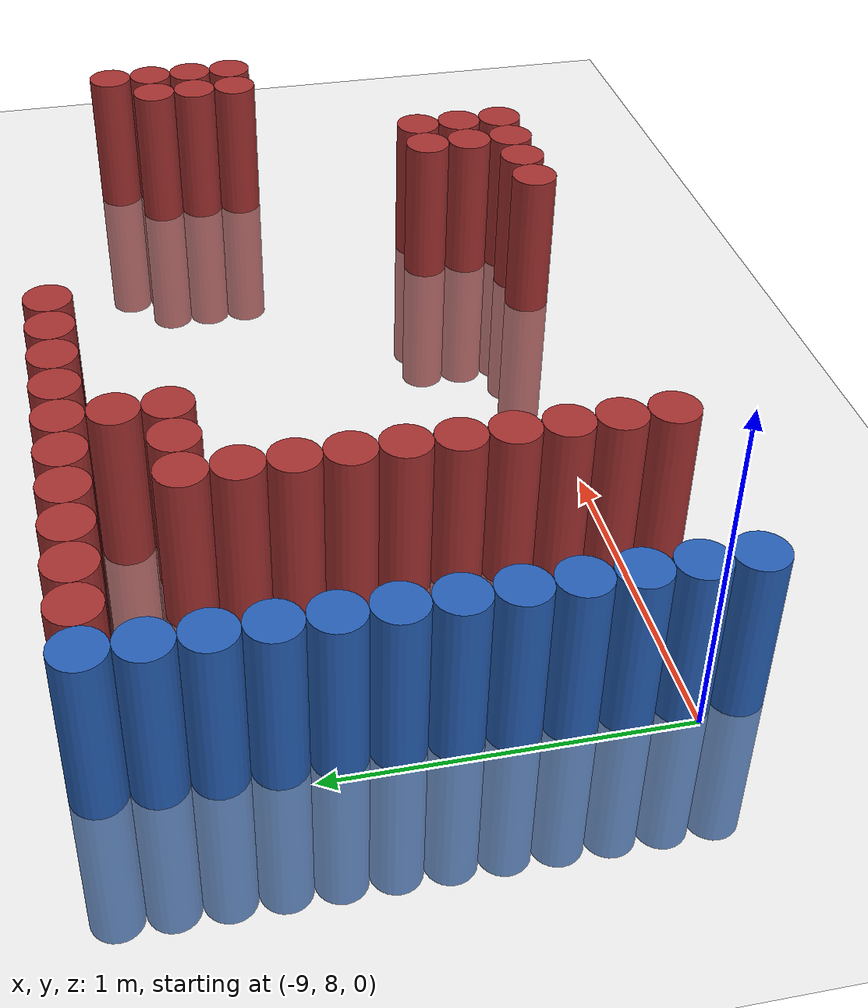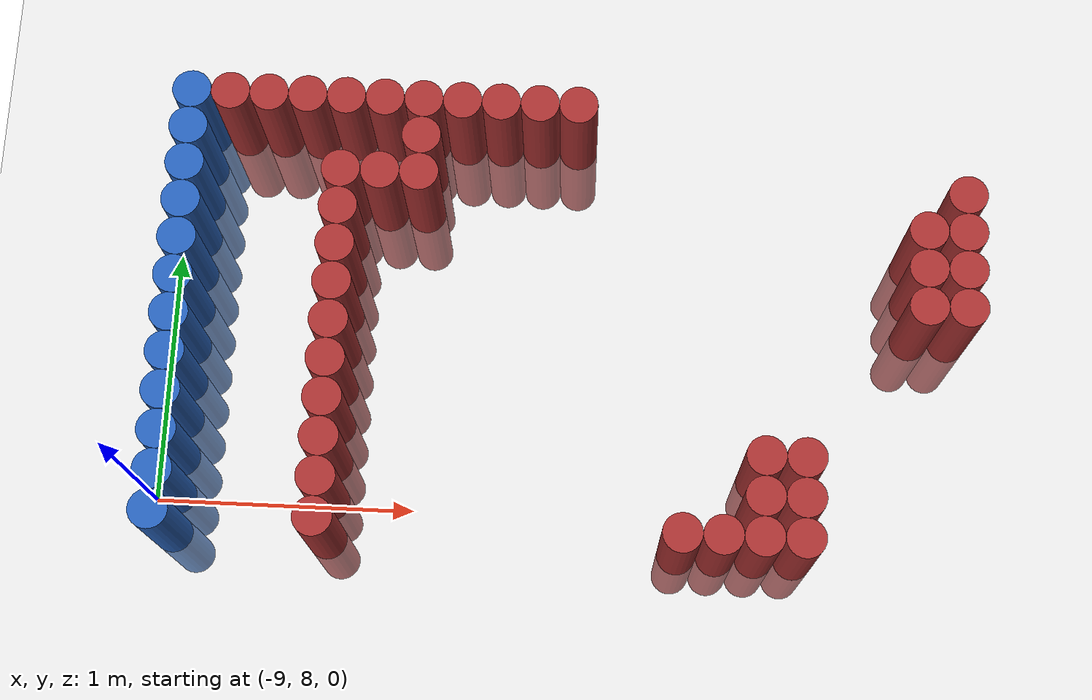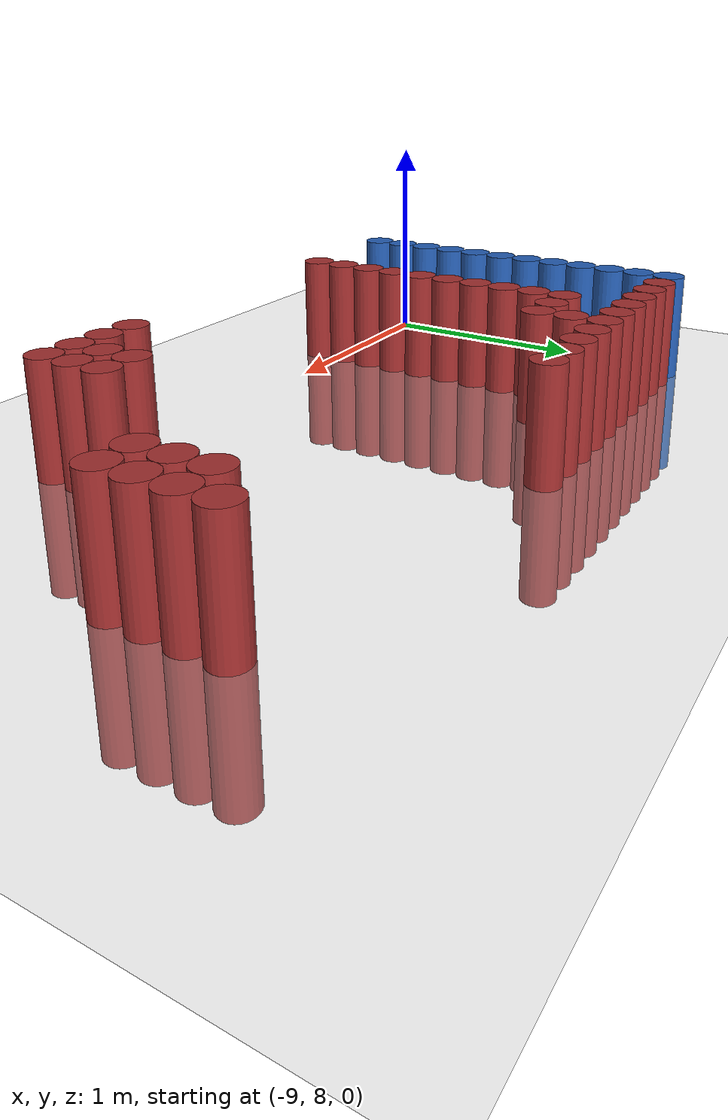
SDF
<sdf version="1.6">
 <world name="default">
  <model name="ground_plane">
   <static>1</static>
   <link name="link">
    <collision name="collision">
     <geometry><plane><normal>0 0 1</normal><size>100 100</size></plane></geometry>
     <surface><friction><ode><mu>100</mu><mu2>50</mu2></ode></friction></surface>
    </collision>
    <visual name="visual">
     <cast_shadows>0</cast_shadows>
     <geometry><plane><normal>0 0 1</normal><size>100 100</size></plane></geometry>
     <material>
      <script><uri>file://media/materials/scripts/gazebo.material</uri><name>Gazebo/Grey</name></script>
     </material>
    </visual>
   </link>
  </model>
  <model name="unit_cylinder_143">
   <static>1</static>
   <pose>-8.925000 7.875000 0.000000 0.000000 0.000000 0.000000</pose>
   <link name="link">
    <inertial>
     <mass>1</mass>
     <inertia><ixx>0.145833</ixx><ixy>0</ixy><ixz>0</ixz><iyy>0.145833</iyy><iyz>0</iyz><izz>0.125</izz></inertia>
    </inertial>
    <collision name="collision">
     <geometry><cylinder><radius>0.075000</radius><length>1</length></cylinder></geometry>
    </collision>
    <visual name="visual">
     <geometry><cylinder><radius>0.075000</radius><length>1</length></cylinder></geometry>
     <material>
      <ambient>0.152000 0.379000 0.720000 1</ambient>
      <diffuse>0.152000 0.379000 0.720000 1</diffuse>
     </material>
     <material>
      <script><name>Gazebo/Grey</name><uri>file://media/materials/scripts/gazebo.material</uri></script>
     </material>
    </visual>
   </link>
  </model>
  <model name="unit_cylinder_144">
   <static>1</static>
   <pose>-8.925000 8.025000 0.000000 0.000000 0.000000 0.000000</pose>
   <link name="link">
    <inertial>
     <mass>1</mass>
     <inertia><ixx>0.145833</ixx><ixy>0</ixy><ixz>0</ixz><iyy>0.145833</iyy><iyz>0</iyz><izz>0.125</izz></inertia>
    </inertial>
    <collision name="collision">
     <geometry><cylinder><radius>0.075000</radius><length>1</length></cylinder></geometry>
    </collision>
    <visual name="visual">
     <geometry><cylinder><radius>0.075000</radius><length>1</length></cylinder></geometry>
     <material>
      <ambient>0.152000 0.379000 0.720000 1</ambient>
      <diffuse>0.152000 0.379000 0.720000 1</diffuse>
     </material>
     <material>
      <script><name>Gazebo/Grey</name><uri>file://media/materials/scripts/gazebo.material</uri></script>
     </material>
    </visual>
   </link>
  </model>
  <model name="unit_cylinder_145">
   <static>1</static>
   <pose>-8.925000 8.175000 0.000000 0.000000 0.000000 0.000000</pose>
   <link name="link">
    <inertial>
     <mass>1</mass>
     <inertia><ixx>0.145833</ixx><ixy>0</ixy><ixz>0</ixz><iyy>0.145833</iyy><iyz>0</iyz><izz>0.125</izz></inertia>
    </inertial>
    <collision name="collision">
     <geometry><cylinder><radius>0.075000</radius><length>1</length></cylinder></geometry>
    </collision>
    <visual name="visual">
     <geometry><cylinder><radius>0.075000</radius><length>1</length></cylinder></geometry>
     <material>
      <ambient>0.152000 0.379000 0.720000 1</ambient>
      <diffuse>0.152000 0.379000 0.720000 1</diffuse>
     </material>
     <material>
      <script><name>Gazebo/Grey</name><uri>file://media/materials/scripts/gazebo.material</uri></script>
     </material>
    </visual>
   </link>
  </model>
  <model name="unit_cylinder_146">
   <static>1</static>
   <pose>-8.925000 8.325000 0.000000 0.000000 0.000000 0.000000</pose>
   <link name="link">
    <inertial>
     <mass>1</mass>
     <inertia><ixx>0.145833</ixx><ixy>0</ixy><ixz>0</ixz><iyy>0.145833</iyy><iyz>0</iyz><izz>0.125</izz></inertia>
    </inertial>
    <collision name="collision">
     <geometry><cylinder><radius>0.075000</radius><length>1</length></cylinder></geometry>
    </collision>
    <visual name="visual">
     <geometry><cylinder><radius>0.075000</radius><length>1</length></cylinder></geometry>
     <material>
      <ambient>0.152000 0.379000 0.720000 1</ambient>
      <diffuse>0.152000 0.379000 0.720000 1</diffuse>
     </material>
     <material>
      <script><name>Gazebo/Grey</name><uri>file://media/materials/scripts/gazebo.material</uri></script>
     </material>
    </visual>
   </link>
  </model>
  <model name="unit_cylinder_147">
   <static>1</static>
   <pose>-8.925000 8.475000 0.000000 0.000000 0.000000 0.000000</pose>
   <link name="link">
    <inertial>
     <mass>1</mass>
     <inertia><ixx>0.145833</ixx><ixy>0</ixy><ixz>0</ixz><iyy>0.145833</iyy><iyz>0</iyz><izz>0.125</izz></inertia>
    </inertial>
    <collision name="collision">
     <geometry><cylinder><radius>0.075000</radius><length>1</length></cylinder></geometry>
    </collision>
    <visual name="visual">
     <geometry><cylinder><radius>0.075000</radius><length>1</length></cylinder></geometry>
     <material>
      <ambient>0.152000 0.379000 0.720000 1</ambient>
      <diffuse>0.152000 0.379000 0.720000 1</diffuse>
     </material>
     <material>
      <script><name>Gazebo/Grey</name><uri>file://media/materials/scripts/gazebo.material</uri></script>
     </material>
    </visual>
   </link>
  </model>
  <model name="unit_cylinder_148">
   <static>1</static>
   <pose>-8.925000 8.625000 0.000000 0.000000 0.000000 0.000000</pose>
   <link name="link">
    <inertial>
     <mass>1</mass>
     <inertia><ixx>0.145833</ixx><ixy>0</ixy><ixz>0</ixz><iyy>0.145833</iyy><iyz>0</iyz><izz>0.125</izz></inertia>
    </inertial>
    <collision name="collision">
     <geometry><cylinder><radius>0.075000</radius><length>1</length></cylinder></geometry>
    </collision>
    <visual name="visual">
     <geometry><cylinder><radius>0.075000</radius><length>1</length></cylinder></geometry>
     <material>
      <ambient>0.152000 0.379000 0.720000 1</ambient>
      <diffuse>0.152000 0.379000 0.720000 1</diffuse>
     </material>
     <material>
      <script><name>Gazebo/Grey</name><uri>file://media/materials/scripts/gazebo.material</uri></script>
     </material>
    </visual>
   </link>
  </model>
  <model name="unit_cylinder_149">
   <static>1</static>
   <pose>-8.925000 8.775000 0.000000 0.000000 0.000000 0.000000</pose>
   <link name="link">
    <inertial>
     <mass>1</mass>
     <inertia><ixx>0.145833</ixx><ixy>0</ixy><ixz>0</ixz><iyy>0.145833</iyy><iyz>0</iyz><izz>0.125</izz></inertia>
    </inertial>
    <collision name="collision">
     <geometry><cylinder><radius>0.075000</radius><length>1</length></cylinder></geometry>
    </collision>
    <visual name="visual">
     <geometry><cylinder><radius>0.075000</radius><length>1</length></cylinder></geometry>
     <material>
      <ambient>0.152000 0.379000 0.720000 1</ambient>
      <diffuse>0.152000 0.379000 0.720000 1</diffuse>
     </material>
     <material>
      <script><name>Gazebo/Grey</name><uri>file://media/materials/scripts/gazebo.material</uri></script>
     </material>
    </visual>
   </link>
  </model>
  <model name="unit_cylinder_150">
   <static>1</static>
   <pose>-8.925000 8.925000 0.000000 0.000000 0.000000 0.000000</pose>
   <link name="link">
    <inertial>
     <mass>1</mass>
     <inertia><ixx>0.145833</ixx><ixy>0</ixy><ixz>0</ixz><iyy>0.145833</iyy><iyz>0</iyz><izz>0.125</izz></inertia>
    </inertial>
    <collision name="collision">
     <geometry><cylinder><radius>0.075000</radius><length>1</length></cylinder></geometry>
    </collision>
    <visual name="visual">
     <geometry><cylinder><radius>0.075000</radius><length>1</length></cylinder></geometry>
     <material>
      <ambient>0.152000 0.379000 0.720000 1</ambient>
      <diffuse>0.152000 0.379000 0.720000 1</diffuse>
     </material>
     <material>
      <script><name>Gazebo/Grey</name><uri>file://media/materials/scripts/gazebo.material</uri></script>
     </material>
    </visual>
   </link>
  </model>
  <model name="unit_cylinder_151">
   <static>1</static>
   <pose>-8.925000 9.075000 0.000000 0.000000 0.000000 0.000000</pose>
   <link name="link">
    <inertial>
     <mass>1</mass>
     <inertia><ixx>0.145833</ixx><ixy>0</ixy><ixz>0</ixz><iyy>0.145833</iyy><iyz>0</iyz><izz>0.125</izz></inertia>
    </inertial>
    <collision name="collision">
     <geometry><cylinder><radius>0.075000</radius><length>1</length></cylinder></geometry>
    </collision>
    <visual name="visual">
     <geometry><cylinder><radius>0.075000</radius><length>1</length></cylinder></geometry>
     <material>
      <ambient>0.152000 0.379000 0.720000 1</ambient>
      <diffuse>0.152000 0.379000 0.720000 1</diffuse>
     </material>
     <material>
      <script><name>Gazebo/Grey</name><uri>file://media/materials/scripts/gazebo.material</uri></script>
     </material>
    </visual>
   </link>
  </model>
  <model name="unit_cylinder_152">
   <static>1</static>
   <pose>-8.925000 9.225000 0.000000 0.000000 0.000000 0.000000</pose>
   <link name="link">
    <inertial>
     <mass>1</mass>
     <inertia><ixx>0.145833</ixx><ixy>0</ixy><ixz>0</ixz><iyy>0.145833</iyy><iyz>0</iyz><izz>0.125</izz></inertia>
    </inertial>
    <collision name="collision">
     <geometry><cylinder><radius>0.075000</radius><length>1</length></cylinder></geometry>
    </collision>
    <visual name="visual">
     <geometry><cylinder><radius>0.075000</radius><length>1</length></cylinder></geometry>
     <material>
      <ambient>0.152000 0.379000 0.720000 1</ambient>
      <diffuse>0.152000 0.379000 0.720000 1</diffuse>
     </material>
     <material>
      <script><name>Gazebo/Grey</name><uri>file://media/materials/scripts/gazebo.material</uri></script>
     </material>
    </visual>
   </link>
  </model>
  <model name="unit_cylinder_153">
   <static>1</static>
   <pose>-8.925000 9.375000 0.000000 0.000000 0.000000 0.000000</pose>
   <link name="link">
    <inertial>
     <mass>1</mass>
     <inertia><ixx>0.145833</ixx><ixy>0</ixy><ixz>0</ixz><iyy>0.145833</iyy><iyz>0</iyz><izz>0.125</izz></inertia>
    </inertial>
    <collision name="collision">
     <geometry><cylinder><radius>0.075000</radius><length>1</length></cylinder></geometry>
    </collision>
    <visual name="visual">
     <geometry><cylinder><radius>0.075000</radius><length>1</length></cylinder></geometry>
     <material>
      <ambient>0.152000 0.379000 0.720000 1</ambient>
      <diffuse>0.152000 0.379000 0.720000 1</diffuse>
     </material>
     <material>
      <script><name>Gazebo/Grey</name><uri>file://media/materials/scripts/gazebo.material</uri></script>
     </material>
    </visual>
   </link>
  </model>
  <model name="unit_cylinder_154">
   <static>1</static>
   <pose>-8.925000 9.525000 0.000000 0.000000 0.000000 0.000000</pose>
   <link name="link">
    <inertial>
     <mass>1</mass>
     <inertia><ixx>0.145833</ixx><ixy>0</ixy><ixz>0</ixz><iyy>0.145833</iyy><iyz>0</iyz><izz>0.125</izz></inertia>
    </inertial>
    <collision name="collision">
     <geometry><cylinder><radius>0.075000</radius><length>1</length></cylinder></geometry>
    </collision>
    <visual name="visual">
     <geometry><cylinder><radius>0.075000</radius><length>1</length></cylinder></geometry>
     <material>
      <ambient>0.152000 0.379000 0.720000 1</ambient>
      <diffuse>0.152000 0.379000 0.720000 1</diffuse>
     </material>
     <material>
      <script><name>Gazebo/Grey</name><uri>file://media/materials/scripts/gazebo.material</uri></script>
     </material>
    </visual>
   </link>
  </model>
  <model name="unit_cylinder_156">
   <static>1</static>
   <pose>-8.775000 9.525000 0.000000 0.000000 0.000000 0.000000</pose>
   <link name="link">
    <inertial>
     <mass>1</mass>
     <inertia><ixx>0.145833</ixx><ixy>0</ixy><ixz>0</ixz><iyy>0.145833</iyy><iyz>0</iyz><izz>0.125</izz></inertia>
    </inertial>
    <collision name="collision">
     <geometry><cylinder><radius>0.075000</radius><length>1</length></cylinder></geometry>
    </collision>
    <visual name="visual">
     <geometry><cylinder><radius>0.075000</radius><length>1</length></cylinder></geometry>
     <material>
      <ambient>0.648000 0.192000 0.192000 1</ambient>
      <diffuse>0.648000 0.192000 0.192000 1</diffuse>
     </material>
     <material>
      <script><name>Gazebo/Grey</name><uri>file://media/materials/scripts/gazebo.material</uri></script>
     </material>
    </visual>
   </link>
  </model>
  <model name="unit_cylinder_158">
   <static>1</static>
   <pose>-8.625000 9.525000 0.000000 0.000000 0.000000 0.000000</pose>
   <link name="link">
    <inertial>
     <mass>1</mass>
     <inertia><ixx>0.145833</ixx><ixy>0</ixy><ixz>0</ixz><iyy>0.145833</iyy><iyz>0</iyz><izz>0.125</izz></inertia>
    </inertial>
    <collision name="collision">
     <geometry><cylinder><radius>0.075000</radius><length>1</length></cylinder></geometry>
    </collision>
    <visual name="visual">
     <geometry><cylinder><radius>0.075000</radius><length>1</length></cylinder></geometry>
     <material>
      <ambient>0.648000 0.192000 0.192000 1</ambient>
      <diffuse>0.648000 0.192000 0.192000 1</diffuse>
     </material>
     <material>
      <script><name>Gazebo/Grey</name><uri>file://media/materials/scripts/gazebo.material</uri></script>
     </material>
    </visual>
   </link>
  </model>
  <model name="unit_cylinder_160">
   <static>1</static>
   <pose>-8.475000 9.525000 0.000000 0.000000 0.000000 0.000000</pose>
   <link name="link">
    <inertial>
     <mass>1</mass>
     <inertia><ixx>0.145833</ixx><ixy>0</ixy><ixz>0</ixz><iyy>0.145833</iyy><iyz>0</iyz><izz>0.125</izz></inertia>
    </inertial>
    <collision name="collision">
     <geometry><cylinder><radius>0.075000</radius><length>1</length></cylinder></geometry>
    </collision>
    <visual name="visual">
     <geometry><cylinder><radius>0.075000</radius><length>1</length></cylinder></geometry>
     <material>
      <ambient>0.648000 0.192000 0.192000 1</ambient>
      <diffuse>0.648000 0.192000 0.192000 1</diffuse>
     </material>
     <material>
      <script><name>Gazebo/Grey</name><uri>file://media/materials/scripts/gazebo.material</uri></script>
     </material>
    </visual>
   </link>
  </model>
  <model name="unit_cylinder_172">
   <static>1</static>
   <pose>-8.325000 7.875000 0.000000 0.000000 0.000000 0.000000</pose>
   <link name="link">
    <inertial>
     <mass>1</mass>
     <inertia><ixx>0.145833</ixx><ixy>0</ixy><ixz>0</ixz><iyy>0.145833</iyy><iyz>0</iyz><izz>0.125</izz></inertia>
    </inertial>
    <collision name="collision">
     <geometry><cylinder><radius>0.075000</radius><length>1</length></cylinder></geometry>
    </collision>
    <visual name="visual">
     <geometry><cylinder><radius>0.075000</radius><length>1</length></cylinder></geometry>
     <material>
      <ambient>0.648000 0.192000 0.192000 1</ambient>
      <diffuse>0.648000 0.192000 0.192000 1</diffuse>
     </material>
     <material>
      <script><name>Gazebo/Grey</name><uri>file://media/materials/scripts/gazebo.material</uri></script>
     </material>
    </visual>
   </link>
  </model>
  <model name="unit_cylinder_173">
   <static>1</static>
   <pose>-8.325000 8.025000 0.000000 0.000000 0.000000 0.000000</pose>
   <link name="link">
    <inertial>
     <mass>1</mass>
     <inertia><ixx>0.145833</ixx><ixy>0</ixy><ixz>0</ixz><iyy>0.145833</iyy><iyz>0</iyz><izz>0.125</izz></inertia>
    </inertial>
    <collision name="collision">
     <geometry><cylinder><radius>0.075000</radius><length>1</length></cylinder></geometry>
    </collision>
    <visual name="visual">
     <geometry><cylinder><radius>0.075000</radius><length>1</length></cylinder></geometry>
     <material>
      <ambient>0.648000 0.192000 0.192000 1</ambient>
      <diffuse>0.648000 0.192000 0.192000 1</diffuse>
     </material>
     <material>
      <script><name>Gazebo/Grey</name><uri>file://media/materials/scripts/gazebo.material</uri></script>
     </material>
    </visual>
   </link>
  </model>
  <model name="unit_cylinder_174">
   <static>1</static>
   <pose>-8.325000 8.175000 0.000000 0.000000 0.000000 0.000000</pose>
   <link name="link">
    <inertial>
     <mass>1</mass>
     <inertia><ixx>0.145833</ixx><ixy>0</ixy><ixz>0</ixz><iyy>0.145833</iyy><iyz>0</iyz><izz>0.125</izz></inertia>
    </inertial>
    <collision name="collision">
     <geometry><cylinder><radius>0.075000</radius><length>1</length></cylinder></geometry>
    </collision>
    <visual name="visual">
     <geometry><cylinder><radius>0.075000</radius><length>1</length></cylinder></geometry>
     <material>
      <ambient>0.648000 0.192000 0.192000 1</ambient>
      <diffuse>0.648000 0.192000 0.192000 1</diffuse>
     </material>
     <material>
      <script><name>Gazebo/Grey</name><uri>file://media/materials/scripts/gazebo.material</uri></script>
     </material>
    </visual>
   </link>
  </model>
  <model name="unit_cylinder_175">
   <static>1</static>
   <pose>-8.325000 8.325000 0.000000 0.000000 0.000000 0.000000</pose>
   <link name="link">
    <inertial>
     <mass>1</mass>
     <inertia><ixx>0.145833</ixx><ixy>0</ixy><ixz>0</ixz><iyy>0.145833</iyy><iyz>0</iyz><izz>0.125</izz></inertia>
    </inertial>
    <collision name="collision">
     <geometry><cylinder><radius>0.075000</radius><length>1</length></cylinder></geometry>
    </collision>
    <visual name="visual">
     <geometry><cylinder><radius>0.075000</radius><length>1</length></cylinder></geometry>
     <material>
      <ambient>0.648000 0.192000 0.192000 1</ambient>
      <diffuse>0.648000 0.192000 0.192000 1</diffuse>
     </material>
     <material>
      <script><name>Gazebo/Grey</name><uri>file://media/materials/scripts/gazebo.material</uri></script>
     </material>
    </visual>
   </link>
  </model>
  <model name="unit_cylinder_176">
   <static>1</static>
   <pose>-8.325000 8.475000 0.000000 0.000000 0.000000 0.000000</pose>
   <link name="link">
    <inertial>
     <mass>1</mass>
     <inertia><ixx>0.145833</ixx><ixy>0</ixy><ixz>0</ixz><iyy>0.145833</iyy><iyz>0</iyz><izz>0.125</izz></inertia>
    </inertial>
    <collision name="collision">
     <geometry><cylinder><radius>0.075000</radius><length>1</length></cylinder></geometry>
    </collision>
    <visual name="visual">
     <geometry><cylinder><radius>0.075000</radius><length>1</length></cylinder></geometry>
     <material>
      <ambient>0.648000 0.192000 0.192000 1</ambient>
      <diffuse>0.648000 0.192000 0.192000 1</diffuse>
     </material>
     <material>
      <script><name>Gazebo/Grey</name><uri>file://media/materials/scripts/gazebo.material</uri></script>
     </material>
    </visual>
   </link>
  </model>
  <model name="unit_cylinder_177">
   <static>1</static>
   <pose>-8.325000 8.625000 0.000000 0.000000 0.000000 0.000000</pose>
   <link name="link">
    <inertial>
     <mass>1</mass>
     <inertia><ixx>0.145833</ixx><ixy>0</ixy><ixz>0</ixz><iyy>0.145833</iyy><iyz>0</iyz><izz>0.125</izz></inertia>
    </inertial>
    <collision name="collision">
     <geometry><cylinder><radius>0.075000</radius><length>1</length></cylinder></geometry>
    </collision>
    <visual name="visual">
     <geometry><cylinder><radius>0.075000</radius><length>1</length></cylinder></geometry>
     <material>
      <ambient>0.648000 0.192000 0.192000 1</ambient>
      <diffuse>0.648000 0.192000 0.192000 1</diffuse>
     </material>
     <material>
      <script><name>Gazebo/Grey</name><uri>file://media/materials/scripts/gazebo.material</uri></script>
     </material>
    </visual>
   </link>
  </model>
  <model name="unit_cylinder_178">
   <static>1</static>
   <pose>-8.325000 8.775000 0.000000 0.000000 0.000000 0.000000</pose>
   <link name="link">
    <inertial>
     <mass>1</mass>
     <inertia><ixx>0.145833</ixx><ixy>0</ixy><ixz>0</ixz><iyy>0.145833</iyy><iyz>0</iyz><izz>0.125</izz></inertia>
    </inertial>
    <collision name="collision">
     <geometry><cylinder><radius>0.075000</radius><length>1</length></cylinder></geometry>
    </collision>
    <visual name="visual">
     <geometry><cylinder><radius>0.075000</radius><length>1</length></cylinder></geometry>
     <material>
      <ambient>0.648000 0.192000 0.192000 1</ambient>
      <diffuse>0.648000 0.192000 0.192000 1</diffuse>
     </material>
     <material>
      <script><name>Gazebo/Grey</name><uri>file://media/materials/scripts/gazebo.material</uri></script>
     </material>
    </visual>
   </link>
  </model>
  <model name="unit_cylinder_179">
   <static>1</static>
   <pose>-8.325000 8.925000 0.000000 0.000000 0.000000 0.000000</pose>
   <link name="link">
    <inertial>
     <mass>1</mass>
     <inertia><ixx>0.145833</ixx><ixy>0</ixy><ixz>0</ixz><iyy>0.145833</iyy><iyz>0</iyz><izz>0.125</izz></inertia>
    </inertial>
    <collision name="collision">
     <geometry><cylinder><radius>0.075000</radius><length>1</length></cylinder></geometry>
    </collision>
    <visual name="visual">
     <geometry><cylinder><radius>0.075000</radius><length>1</length></cylinder></geometry>
     <material>
      <ambient>0.648000 0.192000 0.192000 1</ambient>
      <diffuse>0.648000 0.192000 0.192000 1</diffuse>
     </material>
     <material>
      <script><name>Gazebo/Grey</name><uri>file://media/materials/scripts/gazebo.material</uri></script>
     </material>
    </visual>
   </link>
  </model>
  <model name="unit_cylinder_180">
   <static>1</static>
   <pose>-8.325000 9.075000 0.000000 0.000000 0.000000 0.000000</pose>
   <link name="link">
    <inertial>
     <mass>1</mass>
     <inertia><ixx>0.145833</ixx><ixy>0</ixy><ixz>0</ixz><iyy>0.145833</iyy><iyz>0</iyz><izz>0.125</izz></inertia>
    </inertial>
    <collision name="collision">
     <geometry><cylinder><radius>0.075000</radius><length>1</length></cylinder></geometry>
    </collision>
    <visual name="visual">
     <geometry><cylinder><radius>0.075000</radius><length>1</length></cylinder></geometry>
     <material>
      <ambient>0.648000 0.192000 0.192000 1</ambient>
      <diffuse>0.648000 0.192000 0.192000 1</diffuse>
     </material>
     <material>
      <script><name>Gazebo/Grey</name><uri>file://media/materials/scripts/gazebo.material</uri></script>
     </material>
    </visual>
   </link>
  </model>
  <model name="unit_cylinder_181">
   <static>1</static>
   <pose>-8.325000 9.225000 0.000000 0.000000 0.000000 0.000000</pose>
   <link name="link">
    <inertial>
     <mass>1</mass>
     <inertia><ixx>0.145833</ixx><ixy>0</ixy><ixz>0</ixz><iyy>0.145833</iyy><iyz>0</iyz><izz>0.125</izz></inertia>
    </inertial>
    <collision name="collision">
     <geometry><cylinder><radius>0.075000</radius><length>1</length></cylinder></geometry>
    </collision>
    <visual name="visual">
     <geometry><cylinder><radius>0.075000</radius><length>1</length></cylinder></geometry>
     <material>
      <ambient>0.648000 0.192000 0.192000 1</ambient>
      <diffuse>0.648000 0.192000 0.192000 1</diffuse>
     </material>
     <material>
      <script><name>Gazebo/Grey</name><uri>file://media/materials/scripts/gazebo.material</uri></script>
     </material>
    </visual>
   </link>
  </model>
  <model name="unit_cylinder_182">
   <static>1</static>
   <pose>-8.325000 9.525000 0.000000 0.000000 0.000000 0.000000</pose>
   <link name="link">
    <inertial>
     <mass>1</mass>
     <inertia><ixx>0.145833</ixx><ixy>0</ixy><ixz>0</ixz><iyy>0.145833</iyy><iyz>0</iyz><izz>0.125</izz></inertia>
    </inertial>
    <collision name="collision">
     <geometry><cylinder><radius>0.075000</radius><length>1</length></cylinder></geometry>
    </collision>
    <visual name="visual">
     <geometry><cylinder><radius>0.075000</radius><length>1</length></cylinder></geometry>
     <material>
      <ambient>0.648000 0.192000 0.192000 1</ambient>
      <diffuse>0.648000 0.192000 0.192000 1</diffuse>
     </material>
     <material>
      <script><name>Gazebo/Grey</name><uri>file://media/materials/scripts/gazebo.material</uri></script>
     </material>
    </visual>
   </link>
  </model>
  <model name="unit_cylinder_185">
   <static>1</static>
   <pose>-8.175000 9.225000 0.000000 0.000000 0.000000 0.000000</pose>
   <link name="link">
    <inertial>
     <mass>1</mass>
     <inertia><ixx>0.145833</ixx><ixy>0</ixy><ixz>0</ixz><iyy>0.145833</iyy><iyz>0</iyz><izz>0.125</izz></inertia>
    </inertial>
    <collision name="collision">
     <geometry><cylinder><radius>0.075000</radius><length>1</length></cylinder></geometry>
    </collision>
    <visual name="visual">
     <geometry><cylinder><radius>0.075000</radius><length>1</length></cylinder></geometry>
     <material>
      <ambient>0.648000 0.192000 0.192000 1</ambient>
      <diffuse>0.648000 0.192000 0.192000 1</diffuse>
     </material>
     <material>
      <script><name>Gazebo/Grey</name><uri>file://media/materials/scripts/gazebo.material</uri></script>
     </material>
    </visual>
   </link>
  </model>
  <model name="unit_cylinder_186">
   <static>1</static>
   <pose>-8.175000 9.525000 0.000000 0.000000 0.000000 0.000000</pose>
   <link name="link">
    <inertial>
     <mass>1</mass>
     <inertia><ixx>0.145833</ixx><ixy>0</ixy><ixz>0</ixz><iyy>0.145833</iyy><iyz>0</iyz><izz>0.125</izz></inertia>
    </inertial>
    <collision name="collision">
     <geometry><cylinder><radius>0.075000</radius><length>1</length></cylinder></geometry>
    </collision>
    <visual name="visual">
     <geometry><cylinder><radius>0.075000</radius><length>1</length></cylinder></geometry>
     <material>
      <ambient>0.648000 0.192000 0.192000 1</ambient>
      <diffuse>0.648000 0.192000 0.192000 1</diffuse>
     </material>
     <material>
      <script><name>Gazebo/Grey</name><uri>file://media/materials/scripts/gazebo.material</uri></script>
     </material>
    </visual>
   </link>
  </model>
  <model name="unit_cylinder_189">
   <static>1</static>
   <pose>-8.025000 9.225000 0.000000 0.000000 0.000000 0.000000</pose>
   <link name="link">
    <inertial>
     <mass>1</mass>
     <inertia><ixx>0.145833</ixx><ixy>0</ixy><ixz>0</ixz><iyy>0.145833</iyy><iyz>0</iyz><izz>0.125</izz></inertia>
    </inertial>
    <collision name="collision">
     <geometry><cylinder><radius>0.075000</radius><length>1</length></cylinder></geometry>
    </collision>
    <visual name="visual">
     <geometry><cylinder><radius>0.075000</radius><length>1</length></cylinder></geometry>
     <material>
      <ambient>0.648000 0.192000 0.192000 1</ambient>
      <diffuse>0.648000 0.192000 0.192000 1</diffuse>
     </material>
     <material>
      <script><name>Gazebo/Grey</name><uri>file://media/materials/scripts/gazebo.material</uri></script>
     </material>
    </visual>
   </link>
  </model>
  <model name="unit_cylinder_190">
   <static>1</static>
   <pose>-8.025000 9.375000 0.000000 0.000000 0.000000 0.000000</pose>
   <link name="link">
    <inertial>
     <mass>1</mass>
     <inertia><ixx>0.145833</ixx><ixy>0</ixy><ixz>0</ixz><iyy>0.145833</iyy><iyz>0</iyz><izz>0.125</izz></inertia>
    </inertial>
    <collision name="collision">
     <geometry><cylinder><radius>0.075000</radius><length>1</length></cylinder></geometry>
    </collision>
    <visual name="visual">
     <geometry><cylinder><radius>0.075000</radius><length>1</length></cylinder></geometry>
     <material>
      <ambient>0.648000 0.192000 0.192000 1</ambient>
      <diffuse>0.648000 0.192000 0.192000 1</diffuse>
     </material>
     <material>
      <script><name>Gazebo/Grey</name><uri>file://media/materials/scripts/gazebo.material</uri></script>
     </material>
    </visual>
   </link>
  </model>
  <model name="unit_cylinder_191">
   <static>1</static>
   <pose>-8.025000 9.525000 0.000000 0.000000 0.000000 0.000000</pose>
   <link name="link">
    <inertial>
     <mass>1</mass>
     <inertia><ixx>0.145833</ixx><ixy>0</ixy><ixz>0</ixz><iyy>0.145833</iyy><iyz>0</iyz><izz>0.125</izz></inertia>
    </inertial>
    <collision name="collision">
     <geometry><cylinder><radius>0.075000</radius><length>1</length></cylinder></geometry>
    </collision>
    <visual name="visual">
     <geometry><cylinder><radius>0.075000</radius><length>1</length></cylinder></geometry>
     <material>
      <ambient>0.648000 0.192000 0.192000 1</ambient>
      <diffuse>0.648000 0.192000 0.192000 1</diffuse>
     </material>
     <material>
      <script><name>Gazebo/Grey</name><uri>file://media/materials/scripts/gazebo.material</uri></script>
     </material>
    </visual>
   </link>
  </model>
  <model name="unit_cylinder_198">
   <static>1</static>
   <pose>-7.875000 9.525000 0.000000 0.000000 0.000000 0.000000</pose>
   <link name="link">
    <inertial>
     <mass>1</mass>
     <inertia><ixx>0.145833</ixx><ixy>0</ixy><ixz>0</ixz><iyy>0.145833</iyy><iyz>0</iyz><izz>0.125</izz></inertia>
    </inertial>
    <collision name="collision">
     <geometry><cylinder><radius>0.075000</radius><length>1</length></cylinder></geometry>
    </collision>
    <visual name="visual">
     <geometry><cylinder><radius>0.075000</radius><length>1</length></cylinder></geometry>
     <material>
      <ambient>0.648000 0.192000 0.192000 1</ambient>
      <diffuse>0.648000 0.192000 0.192000 1</diffuse>
     </material>
     <material>
      <script><name>Gazebo/Grey</name><uri>file://media/materials/scripts/gazebo.material</uri></script>
     </material>
    </visual>
   </link>
  </model>
  <model name="unit_cylinder_204">
   <static>1</static>
   <pose>-7.725000 9.525000 0.000000 0.000000 0.000000 0.000000</pose>
   <link name="link">
    <inertial>
     <mass>1</mass>
     <inertia><ixx>0.145833</ixx><ixy>0</ixy><ixz>0</ixz><iyy>0.145833</iyy><iyz>0</iyz><izz>0.125</izz></inertia>
    </inertial>
    <collision name="collision">
     <geometry><cylinder><radius>0.075000</radius><length>1</length></cylinder></geometry>
    </collision>
    <visual name="visual">
     <geometry><cylinder><radius>0.075000</radius><length>1</length></cylinder></geometry>
     <material>
      <ambient>0.648000 0.192000 0.192000 1</ambient>
      <diffuse>0.648000 0.192000 0.192000 1</diffuse>
     </material>
     <material>
      <script><name>Gazebo/Grey</name><uri>file://media/materials/scripts/gazebo.material</uri></script>
     </material>
    </visual>
   </link>
  </model>
  <model name="unit_cylinder_205">
   <static>1</static>
   <pose>-7.575000 9.525000 0.000000 0.000000 0.000000 0.000000</pose>
   <link name="link">
    <inertial>
     <mass>1</mass>
     <inertia><ixx>0.145833</ixx><ixy>0</ixy><ixz>0</ixz><iyy>0.145833</iyy><iyz>0</iyz><izz>0.125</izz></inertia>
    </inertial>
    <collision name="collision">
     <geometry><cylinder><radius>0.075000</radius><length>1</length></cylinder></geometry>
    </collision>
    <visual name="visual">
     <geometry><cylinder><radius>0.075000</radius><length>1</length></cylinder></geometry>
     <material>
      <ambient>0.648000 0.192000 0.192000 1</ambient>
      <diffuse>0.648000 0.192000 0.192000 1</diffuse>
     </material>
     <material>
      <script><name>Gazebo/Grey</name><uri>file://media/materials/scripts/gazebo.material</uri></script>
     </material>
    </visual>
   </link>
  </model>
  <model name="unit_cylinder_206">
   <static>1</static>
   <pose>-7.425000 9.525000 0.000000 0.000000 0.000000 0.000000</pose>
   <link name="link">
    <inertial>
     <mass>1</mass>
     <inertia><ixx>0.145833</ixx><ixy>0</ixy><ixz>0</ixz><iyy>0.145833</iyy><iyz>0</iyz><izz>0.125</izz></inertia>
    </inertial>
    <collision name="collision">
     <geometry><cylinder><radius>0.075000</radius><length>1</length></cylinder></geometry>
    </collision>
    <visual name="visual">
     <geometry><cylinder><radius>0.075000</radius><length>1</length></cylinder></geometry>
     <material>
      <ambient>0.648000 0.192000 0.192000 1</ambient>
      <diffuse>0.648000 0.192000 0.192000 1</diffuse>
     </material>
     <material>
      <script><name>Gazebo/Grey</name><uri>file://media/materials/scripts/gazebo.material</uri></script>
     </material>
    </visual>
   </link>
  </model>
  <model name="unit_cylinder_208">
   <static>1</static>
   <pose>-6.975000 7.875000 0.000000 0.000000 0.000000 0.000000</pose>
   <link name="link">
    <inertial>
     <mass>1</mass>
     <inertia><ixx>0.145833</ixx><ixy>0</ixy><ixz>0</ixz><iyy>0.145833</iyy><iyz>0</iyz><izz>0.125</izz></inertia>
    </inertial>
    <collision name="collision">
     <geometry><cylinder><radius>0.075000</radius><length>1</length></cylinder></geometry>
    </collision>
    <visual name="visual">
     <geometry><cylinder><radius>0.075000</radius><length>1</length></cylinder></geometry>
     <material>
      <ambient>0.648000 0.192000 0.192000 1</ambient>
      <diffuse>0.648000 0.192000 0.192000 1</diffuse>
     </material>
     <material>
      <script><name>Gazebo/Grey</name><uri>file://media/materials/scripts/gazebo.material</uri></script>
     </material>
    </visual>
   </link>
  </model>
  <model name="unit_cylinder_210">
   <static>1</static>
   <pose>-6.825000 7.875000 0.000000 0.000000 0.000000 0.000000</pose>
   <link name="link">
    <inertial>
     <mass>1</mass>
     <inertia><ixx>0.145833</ixx><ixy>0</ixy><ixz>0</ixz><iyy>0.145833</iyy><iyz>0</iyz><izz>0.125</izz></inertia>
    </inertial>
    <collision name="collision">
     <geometry><cylinder><radius>0.075000</radius><length>1</length></cylinder></geometry>
    </collision>
    <visual name="visual">
     <geometry><cylinder><radius>0.075000</radius><length>1</length></cylinder></geometry>
     <material>
      <ambient>0.648000 0.192000 0.192000 1</ambient>
      <diffuse>0.648000 0.192000 0.192000 1</diffuse>
     </material>
     <material>
      <script><name>Gazebo/Grey</name><uri>file://media/materials/scripts/gazebo.material</uri></script>
     </material>
    </visual>
   </link>
  </model>
  <model name="unit_cylinder_212">
   <static>1</static>
   <pose>-6.675000 7.875000 0.000000 0.000000 0.000000 0.000000</pose>
   <link name="link">
    <inertial>
     <mass>1</mass>
     <inertia><ixx>0.145833</ixx><ixy>0</ixy><ixz>0</ixz><iyy>0.145833</iyy><iyz>0</iyz><izz>0.125</izz></inertia>
    </inertial>
    <collision name="collision">
     <geometry><cylinder><radius>0.075000</radius><length>1</length></cylinder></geometry>
    </collision>
    <visual name="visual">
     <geometry><cylinder><radius>0.075000</radius><length>1</length></cylinder></geometry>
     <material>
      <ambient>0.648000 0.192000 0.192000 1</ambient>
      <diffuse>0.648000 0.192000 0.192000 1</diffuse>
     </material>
     <material>
      <script><name>Gazebo/Grey</name><uri>file://media/materials/scripts/gazebo.material</uri></script>
     </material>
    </visual>
   </link>
  </model>
  <model name="unit_cylinder_213">
   <static>1</static>
   <pose>-6.675000 8.025000 0.000000 0.000000 0.000000 0.000000</pose>
   <link name="link">
    <inertial>
     <mass>1</mass>
     <inertia><ixx>0.145833</ixx><ixy>0</ixy><ixz>0</ixz><iyy>0.145833</iyy><iyz>0</iyz><izz>0.125</izz></inertia>
    </inertial>
    <collision name="collision">
     <geometry><cylinder><radius>0.075000</radius><length>1</length></cylinder></geometry>
    </collision>
    <visual name="visual">
     <geometry><cylinder><radius>0.075000</radius><length>1</length></cylinder></geometry>
     <material>
      <ambient>0.648000 0.192000 0.192000 1</ambient>
      <diffuse>0.648000 0.192000 0.192000 1</diffuse>
     </material>
     <material>
      <script><name>Gazebo/Grey</name><uri>file://media/materials/scripts/gazebo.material</uri></script>
     </material>
    </visual>
   </link>
  </model>
  <model name="unit_cylinder_214">
   <static>1</static>
   <pose>-6.675000 8.175000 0.000000 0.000000 0.000000 0.000000</pose>
   <link name="link">
    <inertial>
     <mass>1</mass>
     <inertia><ixx>0.145833</ixx><ixy>0</ixy><ixz>0</ixz><iyy>0.145833</iyy><iyz>0</iyz><izz>0.125</izz></inertia>
    </inertial>
    <collision name="collision">
     <geometry><cylinder><radius>0.075000</radius><length>1</length></cylinder></geometry>
    </collision>
    <visual name="visual">
     <geometry><cylinder><radius>0.075000</radius><length>1</length></cylinder></geometry>
     <material>
      <ambient>0.648000 0.192000 0.192000 1</ambient>
      <diffuse>0.648000 0.192000 0.192000 1</diffuse>
     </material>
     <material>
      <script><name>Gazebo/Grey</name><uri>file://media/materials/scripts/gazebo.material</uri></script>
     </material>
    </visual>
   </link>
  </model>
  <model name="unit_cylinder_218">
   <static>1</static>
   <pose>-6.525000 7.875000 0.000000 0.000000 0.000000 0.000000</pose>
   <link name="link">
    <inertial>
     <mass>1</mass>
     <inertia><ixx>0.145833</ixx><ixy>0</ixy><ixz>0</ixz><iyy>0.145833</iyy><iyz>0</iyz><izz>0.125</izz></inertia>
    </inertial>
    <collision name="collision">
     <geometry><cylinder><radius>0.075000</radius><length>1</length></cylinder></geometry>
    </collision>
    <visual name="visual">
     <geometry><cylinder><radius>0.075000</radius><length>1</length></cylinder></geometry>
     <material>
      <ambient>0.648000 0.192000 0.192000 1</ambient>
      <diffuse>0.648000 0.192000 0.192000 1</diffuse>
     </material>
     <material>
      <script><name>Gazebo/Grey</name><uri>file://media/materials/scripts/gazebo.material</uri></script>
     </material>
    </visual>
   </link>
  </model>
  <model name="unit_cylinder_219">
   <static>1</static>
   <pose>-6.525000 8.025000 0.000000 0.000000 0.000000 0.000000</pose>
   <link name="link">
    <inertial>
     <mass>1</mass>
     <inertia><ixx>0.145833</ixx><ixy>0</ixy><ixz>0</ixz><iyy>0.145833</iyy><iyz>0</iyz><izz>0.125</izz></inertia>
    </inertial>
    <collision name="collision">
     <geometry><cylinder><radius>0.075000</radius><length>1</length></cylinder></geometry>
    </collision>
    <visual name="visual">
     <geometry><cylinder><radius>0.075000</radius><length>1</length></cylinder></geometry>
     <material>
      <ambient>0.648000 0.192000 0.192000 1</ambient>
      <diffuse>0.648000 0.192000 0.192000 1</diffuse>
     </material>
     <material>
      <script><name>Gazebo/Grey</name><uri>file://media/materials/scripts/gazebo.material</uri></script>
     </material>
    </visual>
   </link>
  </model>
  <model name="unit_cylinder_220">
   <static>1</static>
   <pose>-6.525000 8.175000 0.000000 0.000000 0.000000 0.000000</pose>
   <link name="link">
    <inertial>
     <mass>1</mass>
     <inertia><ixx>0.145833</ixx><ixy>0</ixy><ixz>0</ixz><iyy>0.145833</iyy><iyz>0</iyz><izz>0.125</izz></inertia>
    </inertial>
    <collision name="collision">
     <geometry><cylinder><radius>0.075000</radius><length>1</length></cylinder></geometry>
    </collision>
    <visual name="visual">
     <geometry><cylinder><radius>0.075000</radius><length>1</length></cylinder></geometry>
     <material>
      <ambient>0.648000 0.192000 0.192000 1</ambient>
      <diffuse>0.648000 0.192000 0.192000 1</diffuse>
     </material>
     <material>
      <script><name>Gazebo/Grey</name><uri>file://media/materials/scripts/gazebo.material</uri></script>
     </material>
    </visual>
   </link>
  </model>
  <model name="unit_cylinder_242">
   <static>1</static>
   <pose>-6.075000 8.775000 0.000000 0.000000 0.000000 0.000000</pose>
   <link name="link">
    <inertial>
     <mass>1</mass>
     <inertia><ixx>0.145833</ixx><ixy>0</ixy><ixz>0</ixz><iyy>0.145833</iyy><iyz>0</iyz><izz>0.125</izz></inertia>
    </inertial>
    <collision name="collision">
     <geometry><cylinder><radius>0.075000</radius><length>1</length></cylinder></geometry>
    </collision>
    <visual name="visual">
     <geometry><cylinder><radius>0.075000</radius><length>1</length></cylinder></geometry>
     <material>
      <ambient>0.648000 0.192000 0.192000 1</ambient>
      <diffuse>0.648000 0.192000 0.192000 1</diffuse>
     </material>
     <material>
      <script><name>Gazebo/Grey</name><uri>file://media/materials/scripts/gazebo.material</uri></script>
     </material>
    </visual>
   </link>
  </model>
  <model name="unit_cylinder_243">
   <static>1</static>
   <pose>-6.075000 8.925000 0.000000 0.000000 0.000000 0.000000</pose>
   <link name="link">
    <inertial>
     <mass>1</mass>
     <inertia><ixx>0.145833</ixx><ixy>0</ixy><ixz>0</ixz><iyy>0.145833</iyy><iyz>0</iyz><izz>0.125</izz></inertia>
    </inertial>
    <collision name="collision">
     <geometry><cylinder><radius>0.075000</radius><length>1</length></cylinder></geometry>
    </collision>
    <visual name="visual">
     <geometry><cylinder><radius>0.075000</radius><length>1</length></cylinder></geometry>
     <material>
      <ambient>0.648000 0.192000 0.192000 1</ambient>
      <diffuse>0.648000 0.192000 0.192000 1</diffuse>
     </material>
     <material>
      <script><name>Gazebo/Grey</name><uri>file://media/materials/scripts/gazebo.material</uri></script>
     </material>
    </visual>
   </link>
  </model>
  <model name="unit_cylinder_244">
   <static>1</static>
   <pose>-6.075000 9.075000 0.000000 0.000000 0.000000 0.000000</pose>
   <link name="link">
    <inertial>
     <mass>1</mass>
     <inertia><ixx>0.145833</ixx><ixy>0</ixy><ixz>0</ixz><iyy>0.145833</iyy><iyz>0</iyz><izz>0.125</izz></inertia>
    </inertial>
    <collision name="collision">
     <geometry><cylinder><radius>0.075000</radius><length>1</length></cylinder></geometry>
    </collision>
    <visual name="visual">
     <geometry><cylinder><radius>0.075000</radius><length>1</length></cylinder></geometry>
     <material>
      <ambient>0.648000 0.192000 0.192000 1</ambient>
      <diffuse>0.648000 0.192000 0.192000 1</diffuse>
     </material>
     <material>
      <script><name>Gazebo/Grey</name><uri>file://media/materials/scripts/gazebo.material</uri></script>
     </material>
    </visual>
   </link>
  </model>
  <model name="unit_cylinder_247">
   <static>1</static>
   <pose>-5.925000 8.775000 0.000000 0.000000 0.000000 0.000000</pose>
   <link name="link">
    <inertial>
     <mass>1</mass>
     <inertia><ixx>0.145833</ixx><ixy>0</ixy><ixz>0</ixz><iyy>0.145833</iyy><iyz>0</iyz><izz>0.125</izz></inertia>
    </inertial>
    <collision name="collision">
     <geometry><cylinder><radius>0.075000</radius><length>1</length></cylinder></geometry>
    </collision>
    <visual name="visual">
     <geometry><cylinder><radius>0.075000</radius><length>1</length></cylinder></geometry>
     <material>
      <ambient>0.648000 0.192000 0.192000 1</ambient>
      <diffuse>0.648000 0.192000 0.192000 1</diffuse>
     </material>
     <material>
      <script><name>Gazebo/Grey</name><uri>file://media/materials/scripts/gazebo.material</uri></script>
     </material>
    </visual>
   </link>
  </model>
  <model name="unit_cylinder_248">
   <static>1</static>
   <pose>-5.925000 8.925000 0.000000 0.000000 0.000000 0.000000</pose>
   <link name="link">
    <inertial>
     <mass>1</mass>
     <inertia><ixx>0.145833</ixx><ixy>0</ixy><ixz>0</ixz><iyy>0.145833</iyy><iyz>0</iyz><izz>0.125</izz></inertia>
    </inertial>
    <collision name="collision">
     <geometry><cylinder><radius>0.075000</radius><length>1</length></cylinder></geometry>
    </collision>
    <visual name="visual">
     <geometry><cylinder><radius>0.075000</radius><length>1</length></cylinder></geometry>
     <material>
      <ambient>0.648000 0.192000 0.192000 1</ambient>
      <diffuse>0.648000 0.192000 0.192000 1</diffuse>
     </material>
     <material>
      <script><name>Gazebo/Grey</name><uri>file://media/materials/scripts/gazebo.material</uri></script>
     </material>
    </visual>
   </link>
  </model>
  <model name="unit_cylinder_249">
   <static>1</static>
   <pose>-5.925000 9.075000 0.000000 0.000000 0.000000 0.000000</pose>
   <link name="link">
    <inertial>
     <mass>1</mass>
     <inertia><ixx>0.145833</ixx><ixy>0</ixy><ixz>0</ixz><iyy>0.145833</iyy><iyz>0</iyz><izz>0.125</izz></inertia>
    </inertial>
    <collision name="collision">
     <geometry><cylinder><radius>0.075000</radius><length>1</length></cylinder></geometry>
    </collision>
    <visual name="visual">
     <geometry><cylinder><radius>0.075000</radius><length>1</length></cylinder></geometry>
     <material>
      <ambient>0.648000 0.192000 0.192000 1</ambient>
      <diffuse>0.648000 0.192000 0.192000 1</diffuse>
     </material>
     <material>
      <script><name>Gazebo/Grey</name><uri>file://media/materials/scripts/gazebo.material</uri></script>
     </material>
    </visual>
   </link>
  </model>
  <model name="unit_cylinder_250">
   <static>1</static>
   <pose>-5.925000 9.225000 0.000000 0.000000 0.000000 0.000000</pose>
   <link name="link">
    <inertial>
     <mass>1</mass>
     <inertia><ixx>0.145833</ixx><ixy>0</ixy><ixz>0</ixz><iyy>0.145833</iyy><iyz>0</iyz><izz>0.125</izz></inertia>
    </inertial>
    <collision name="collision">
     <geometry><cylinder><radius>0.075000</radius><length>1</length></cylinder></geometry>
    </collision>
    <visual name="visual">
     <geometry><cylinder><radius>0.075000</radius><length>1</length></cylinder></geometry>
     <material>
      <ambient>0.648000 0.192000 0.192000 1</ambient>
      <diffuse>0.648000 0.192000 0.192000 1</diffuse>
     </material>
     <material>
      <script><name>Gazebo/Grey</name><uri>file://media/materials/scripts/gazebo.material</uri></script>
     </material>
    </visual>
   </link>
  </model>
 </world>
</sdf>
